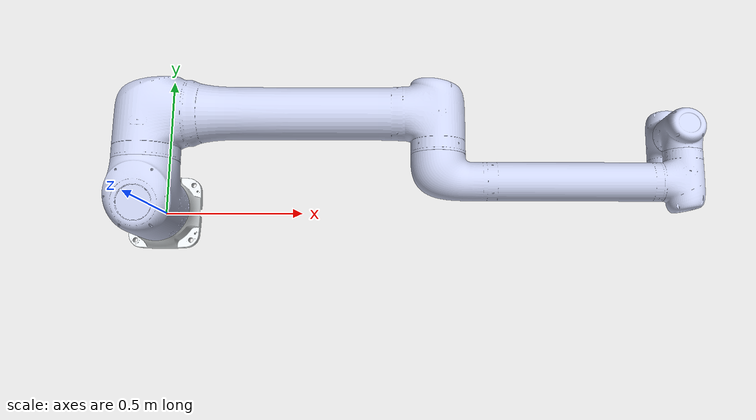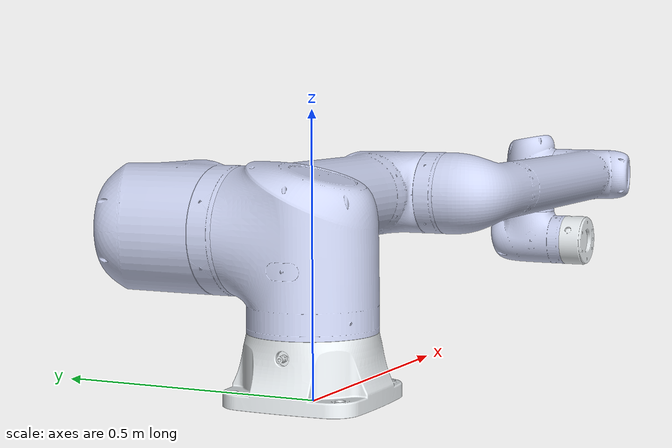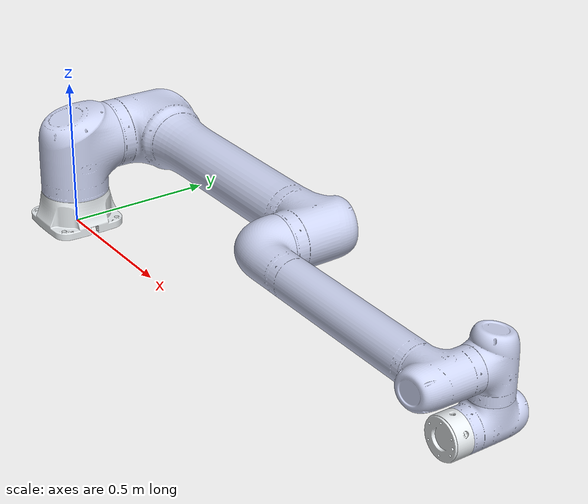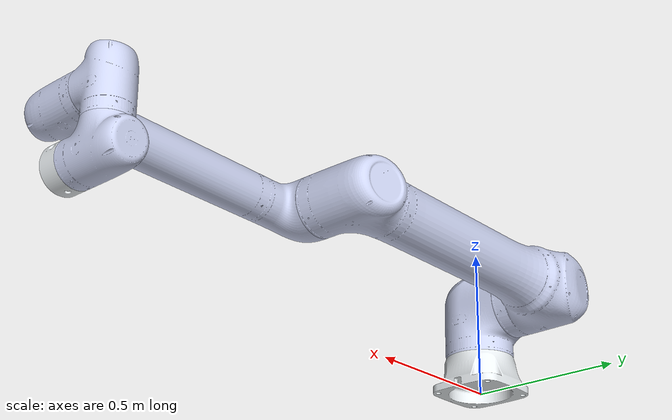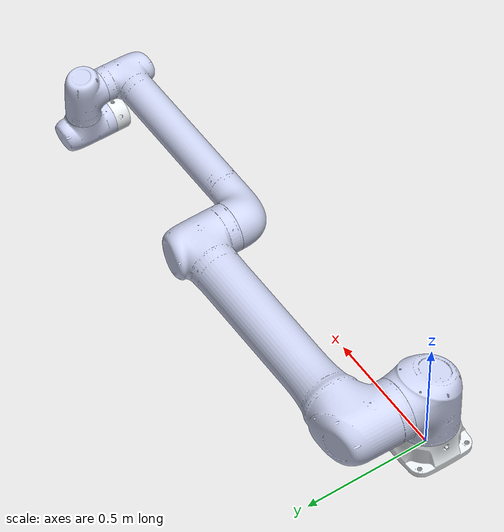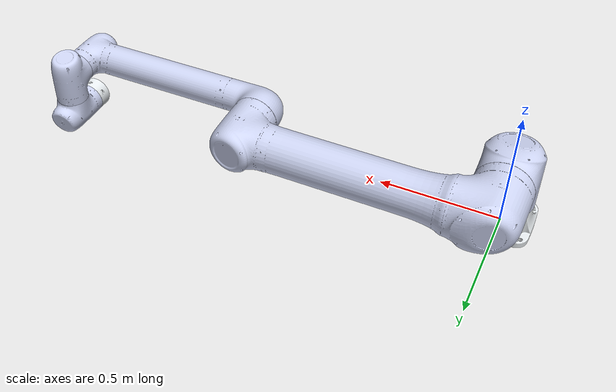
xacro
<?xml version="1.0"?>
<robot xmlns:xacro="http://www.ros.org/wiki/xacro" name="jaka_zu35">
    <xacro:arg name="initial_positions_file" default="initial_positions.yaml" />
    <xacro:arg name="use_gazebo" default="false"/>
    <xacro:arg name="use_rviz_sim" default="false"/>

    <!-- Import jaka_zu35 urdf file -->
    <xacro:include filename="$(find jaka_description)/urdf/jaka_zu35.urdf" />

    <!-- Import control_xacro -->
    <xacro:include filename="jaka_zu35.ros2_control.xacro" />

    <xacro:jaka_zu35_ros2_control name="jaka_zu35_hardware" initial_positions_file="$(arg initial_positions_file)" use_gazebo="$(arg use_gazebo)" use_rviz_sim="$(arg use_rviz_sim)"/>

</robot>

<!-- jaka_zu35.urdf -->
<robot
  name="jaka_zu35">
  <!-- LINK -->
  <link name="world" />
  <link
    name="Joint_00">
    <inertial>
      <origin
        xyz="-0.00048325 -5.7936E-05 0.066796"
        rpy="0 0 0" />
      <mass
        value="11.327" />
      <inertia
        ixx="0.063264"
        ixy="-1.7446E-07"
        ixz="-0.00035947"
        iyy="0.062484"
        iyz="-3.2565E-05"
        izz="0.10229" />
    </inertial>
    <visual>
      <origin
        xyz="0 0 0"
        rpy="0 0 0" />
      <geometry>
        <mesh
          filename="package://jaka_description/meshes/jaka_zu35_meshes/Joint_00.STL" />
      </geometry>
      <material
        name="">
        <color
          rgba="0.89804 0.91765 0.92941 1" />
      </material>
    </visual>
    <collision>
      <origin
        xyz="0 0 0"
        rpy="0 0 0" />
      <geometry>
        <mesh
          filename="package://jaka_description/meshes/jaka_zu35_meshes/Joint_00.STL" />
      </geometry>
    </collision>
  </link>
  <!-- JOINT -->
  <joint name="fixed" type="fixed">
    <origin xyz="0 0 0" rpy="0 0 0" />
     <parent link="world"/>
     <child link="Joint_00"/>
  </joint>
  <link
    name="Joint_01">
    <inertial>
      <origin
        xyz="-5.862E-06 0.017542 -0.031226"
        rpy="0 0 0" />
      <mass
        value="12.56" />
      <inertia
        ixx="0.12469"
        ixy="2.2464E-06"
        ixz="8.3606E-06"
        iyy="0.1172"
        iyz="-0.010026"
        izz="0.093913" />
    </inertial>
    <visual>
      <origin
        xyz="0 0 0"
        rpy="0 0 0" />
      <geometry>
        <mesh
          filename="package://jaka_description/meshes/jaka_zu35_meshes/Joint_01.STL" />
      </geometry>
      <material
        name="">
        <color
          rgba="0.79216 0.81961 0.93333 1" />
      </material>
    </visual>
    <collision>
      <origin
        xyz="0 0 0"
        rpy="0 0 0" />
      <geometry>
        <mesh
          filename="package://jaka_description/meshes/jaka_zu35_meshes/Joint_01.STL" />
      </geometry>
    </collision>
  </link>
  <joint
    name="joint_1"
    type="revolute">
    <origin
      xyz="0 0 0.288"
      rpy="0 0 0" />
    <parent
      link="Joint_00" />
    <child
      link="Joint_01" />
    <axis
      xyz="0 0 1" />
    <limit
      lower="-6.2832"
      upper="6.2832"
      effort="1334"
      velocity="2.618" />
  </joint>
  <link
    name="Joint_02">
    <inertial>
      <origin
        xyz="0.43414 1.4653E-05 -0.28978"
        rpy="0 0 0" />
      <mass
        value="40.014" />
      <inertia
        ixx="0.26277"
        ixy="-0.00018604"
        ixz="0.095713"
        iyy="5.6547"
        iyz="-2.0892E-06"
        izz="5.5985" />
    </inertial>
    <visual>
      <origin
        xyz="0 0 0"
        rpy="0 0 0" />
      <geometry>
        <mesh
          filename="package://jaka_description/meshes/jaka_zu35_meshes/Joint_02.STL" />
      </geometry>
      <material
        name="">
        <color
          rgba="0.79216 0.81961 0.93333 1" />
      </material>
    </visual>
    <collision>
      <origin
        xyz="0 0 0"
        rpy="0 0 0" />
      <geometry>
        <mesh
          filename="package://jaka_description/meshes/jaka_zu35_meshes/Joint_02.STL" />
      </geometry>
    </collision>
  </link>
  <joint
    name="joint_2"
    type="revolute">
    <origin
      xyz="0 0 0"
      rpy="1.5708 0 0" />
    <parent
      link="Joint_01" />
    <child
      link="Joint_02" />
    <axis
      xyz="0 0 1" />
    <limit
      lower="-1.4835"
      upper="4.6251"
      effort="1334"
      velocity="2.618" />
  </joint>
  <link
    name="Joint_03">
    <inertial>
      <origin
        xyz="0.40651 3.3686E-05 -0.076131"
        rpy="0 0 0" />
      <mass
        value="15.154" />
      <inertia
        ixx="0.043966"
        ixy="-3.191E-06"
        ixz="-0.029934"
        iyy="1.3876"
        iyz="-4.8767E-07"
        izz="1.3809" />
    </inertial>
    <visual>
      <origin
        xyz="0 0 0"
        rpy="0 0 0" />
      <geometry>
        <mesh
          filename="package://jaka_description/meshes/jaka_zu35_meshes/Joint_03.STL" />
      </geometry>
      <material
        name="">
        <color
          rgba="0.79216 0.81961 0.93333 1" />
      </material>
    </visual>
    <collision>
      <origin
        xyz="0 0 0"
        rpy="0 0 0" />
      <geometry>
        <mesh
          filename="package://jaka_description/meshes/jaka_zu35_meshes/Joint_03.STL" />
      </geometry>
    </collision>
  </link>
  <joint
    name="joint_3"
    type="revolute">
    <origin
      xyz="0.989 0 0"
      rpy="0 0 0" />
    <parent
      link="Joint_02" />
    <child
      link="Joint_03" />
    <axis
      xyz="0 0 -1" />
    <limit
      lower="-2.9321"
      upper="2.9321"
      effort="762"
      velocity="3.1416" />
  </joint>
  <link
    name="Joint_04">
    <inertial>
      <origin
        xyz="7.3495E-07 -0.0071585 0.0084335"
        rpy="0 0 0" />
      <mass
        value="2.9052" />
      <inertia
        ixx="0.0123"
        ixy="-1.8462E-07"
        ixz="-1.2075E-07"
        iyy="0.0070343"
        iyz="-0.00041808"
        izz="0.011682" />
    </inertial>
    <visual>
      <origin
        xyz="0 0 0"
        rpy="0 0 0" />
      <geometry>
        <mesh
          filename="package://jaka_description/meshes/jaka_zu35_meshes/Joint_04.STL" />
      </geometry>
      <material
        name="">
        <color
          rgba="0.79216 0.81961 0.93333 1" />
      </material>
    </visual>
    <collision>
      <origin
        xyz="0 0 0"
        rpy="0 0 0" />
      <geometry>
        <mesh
          filename="package://jaka_description/meshes/jaka_zu35_meshes/Joint_04.STL" />
      </geometry>
    </collision>
  </link>
  <joint
    name="joint_4"
    type="revolute">
    <origin
      xyz="0.829 0 -0.2505"
      rpy="0 0 0" />
    <parent
      link="Joint_03" />
    <child
      link="Joint_04" />
    <axis
      xyz="0 0 1" />
    <limit
      lower="-6.2832"
      upper="6.2832"
      effort="194"
      velocity="5.236" />
  </joint>
  <link
    name="Joint_05">
    <inertial>
      <origin
        xyz="7.9375E-07 0.0070457 -0.0088597"
        rpy="0 0 0" />
      <mass
        value="2.8814" />
      <inertia
        ixx="0.012359"
        ixy="1.3187E-07"
        ixz="4.9019E-08"
        iyy="0.0069561"
        iyz="-0.00043489"
        izz="0.011754" />
    </inertial>
    <visual>
      <origin
        xyz="0 0 0"
        rpy="0 0 0" />
      <geometry>
        <mesh
          filename="package://jaka_description/meshes/jaka_zu35_meshes/Joint_05.STL" />
      </geometry>
      <material
        name="">
        <color
          rgba="0.79216 0.81961 0.93333 1" />
      </material>
    </visual>
    <collision>
      <origin
        xyz="0 0 0"
        rpy="0 0 0" />
      <geometry>
        <mesh
          filename="package://jaka_description/meshes/jaka_zu35_meshes/Joint_05.STL" />
      </geometry>
    </collision>
  </link>
  <joint
    name="joint_5"
    type="revolute">
    <origin
      xyz="0 -0.182 0"
      rpy="1.5708 0 0" />
    <parent
      link="Joint_04" />
    <child
      link="Joint_05" />
    <axis
      xyz="0 0 1" />
    <limit
      lower="-6.2832"
      upper="6.2832"
      effort="194"
      velocity="5.236" />
  </joint>
  <link
    name="Joint_06">
    <inertial>
      <origin
        xyz="-2.2955E-05 -0.00010959 -0.031754"
        rpy="0 0 0" />
      <mass
        value="2.073" />
      <inertia
        ixx="0.0028239"
        ixy="-3.4875E-07"
        ixz="1.734E-06"
        iyy="0.0028384"
        iyz="-1.8814E-06"
        izz="0.004461" />
    </inertial>
    <visual>
      <origin
        xyz="0 0 0"
        rpy="0 0 0" />
      <geometry>
        <mesh
          filename="package://jaka_description/meshes/jaka_zu35_meshes/Joint_06.STL" />
      </geometry>
      <material
        name="">
        <color
          rgba="0.89804 0.91765 0.92941 1" />
      </material>
    </visual>
    <collision>
      <origin
        xyz="0 0 0"
        rpy="0 0 0" />
      <geometry>
        <mesh
          filename="package://jaka_description/meshes/jaka_zu35_meshes/Joint_06.STL" />
      </geometry>
    </collision>
  </link>
  <joint
    name="joint_6"
    type="revolute">
    <origin
      xyz="0 0.165 0"
      rpy="-1.5708 0 0" />
    <parent
      link="Joint_05" />
    <child
      link="Joint_06" />
    <axis
      xyz="0 0 1" />
    <limit
      lower="-6.2832"
      upper="6.2832"
      effort="194"
      velocity="5.236" />
  </joint>

  <transmission name="trans_joint_1">
        <type>transmission_interface/SimpleTransmission</type>
        <joint name="joint_1">
            <hardwareInterface>hardware_interface/Positionjoint_ointInterface</hardwareInterface>
        </joint>
        <actuator name="joint_1_motor">
            <hardwareInterface>hardware_interface/PositionJointInterface</hardwareInterface>
            <mechanicalReduction>1</mechanicalReduction>
        </actuator>
    </transmission>
    <transmission name="trans_joint_2">
        <type>transmission_interface/SimpleTransmission</type>
        <joint name="joint_2">
            <hardwareInterface>hardware_interface/PositionJointInterface</hardwareInterface>
        </joint>
        <actuator name="joint_2_motor">
            <hardwareInterface>hardware_interface/PositionJointInterface</hardwareInterface>
            <mechanicalReduction>1</mechanicalReduction>
        </actuator>
    </transmission>
    <transmission name="trans_joint_3">
        <type>transmission_interface/SimpleTransmission</type>
        <joint name="joint_3">
            <hardwareInterface>hardware_interface/PositionJointInterface</hardwareInterface>
        </joint>
        <actuator name="joint_3_motor">
            <hardwareInterface>hardware_interface/PositionJointInterface</hardwareInterface>
            <mechanicalReduction>1</mechanicalReduction>
        </actuator>
    </transmission>
    <transmission name="trans_joint_4">
        <type>transmission_interface/SimpleTransmission</type>
        <joint name="joint_4">
            <hardwareInterface>hardware_interface/PositionJointInterface</hardwareInterface>
        </joint>
        <actuator name="joint_4_motor">
            <hardwareInterface>hardware_interface/PositionJointInterface</hardwareInterface>
            <mechanicalReduction>1</mechanicalReduction>
        </actuator>
    </transmission>
    <transmission name="trans_joint_5">
        <type>transmission_interface/SimpleTransmission</type>
        <joint name="joint_5">
            <hardwareInterface>hardware_interface/PositionJointInterface</hardwareInterface>
        </joint>
        <actuator name="joint_5_motor">
            <hardwareInterface>hardware_interface/PositionJointInterface</hardwareInterface>
            <mechanicalReduction>1</mechanicalReduction>
        </actuator>
    </transmission>
    <transmission name="trans_joint_6">
        <type>transmission_interface/SimpleTransmission</type>
        <joint name="joint_6">
            <hardwareInterface>hardware_interface/PositionJointInterface</hardwareInterface>
        </joint>
        <actuator name="joint_6_motor">
            <hardwareInterface>hardware_interface/PositionJointInterface</hardwareInterface>
            <mechanicalReduction>1</mechanicalReduction>
        </actuator>
    </transmission>

    <gazebo>
        <plugin name="ign_ros2_control::IgnitionROS2ControlPlugin" filename="libign_ros2_control-system.so">
          <parameters>$(find jaka_zu35_moveit_config)/config/ros2_controllers.yaml</parameters>
          <robotNamespace>/</robotNamespace>
        </plugin>
    </gazebo>
</robot>
